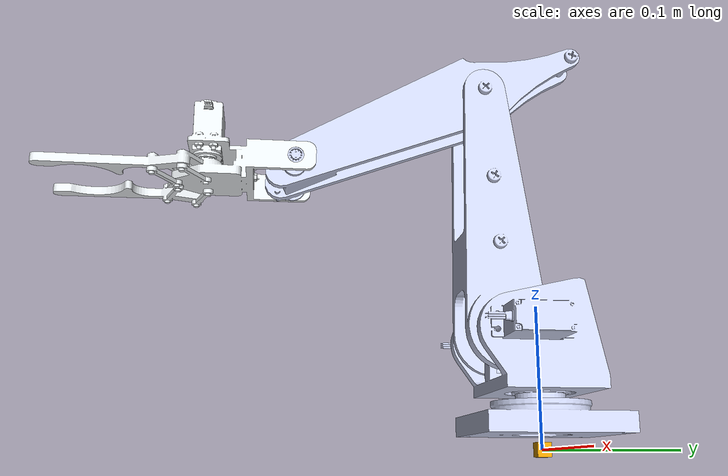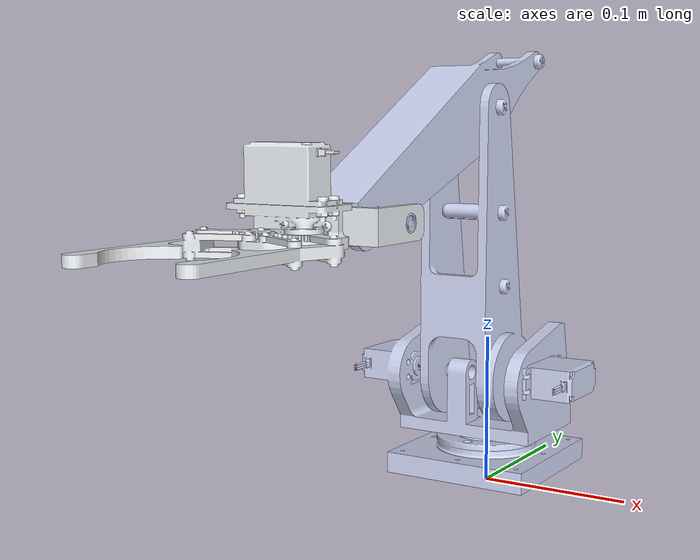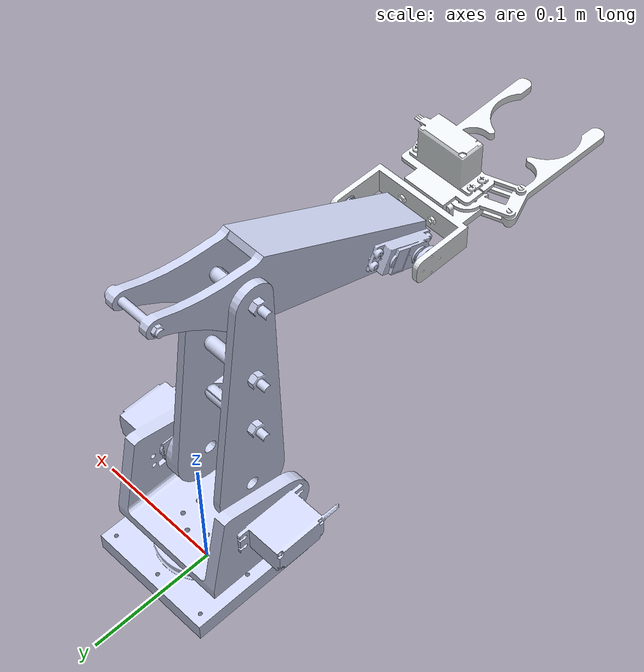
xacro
<?xml version="1.0" encoding="utf-8"?>
<robot name="arm" xmlns:xacro="http://www.ros.org/wiki/xacro">
  <link name="base_footprint">
    <visual>
      <origin
        xyz="0 0 0"
        rpy="0 0 0" />
      <mass   value="1.8" />
      <inertia
        ixx="0.000000000000"
        ixy="0.000000000000"
        ixz="0.000000000000"
        iyy="0.000000000000"
        iyz="0.000000000000"
        izz="0.000000000000" />
      <geometry>
        <box size="0.01 0.01 0.01"/>
      </geometry>
    </visual>
  </link>

  <link name="base_link">
    <inertial>
      <origin
        xyz="2.4100810754784E-09 -1.44493238359068E-08 0.00916688701767407"
        rpy="0 0 0" />
      <mass
        value="1.48135898316253" />
      <inertia
        ixx="0.000124542297357122"
        ixy="9.76806810262928E-13"
        ixz="1.70313497348212E-12"
        iyy="0.000124542109078445"
        iyz="-1.05555456349748E-11"
        izz="0.000244817372701188" />
    </inertial>
    <visual>
      <origin
        xyz="0 0 0"
        rpy="0 0 0" />
      <geometry>
        <mesh
          filename="package://arm/meshes/base_link.STL" />
      </geometry>
      <material
        name="">
        <color
          rgba="0.792156862745098 0.819607843137255 0.933333333333333 1" />
      </material>
    </visual>
    <collision>
      <origin
        xyz="0 0 0"
        rpy="0 0 0" />
      <geometry>
        <mesh
          filename="package://arm/meshes/base_link.STL" />
      </geometry>
    </collision>
  </link>
    <joint
    name="bsaefront"
    type="fixed">
    <origin
      xyz="0 0 0.01"
      rpy="0 0 0" />
    <parent
      link="base_footprint" />
    <child
      link="base_link" />
  </joint>
  <link
    name="zhuantai">
    <inertial>
      <origin
        xyz="-0.011999 0.055179 -8.8289E-05"
        rpy="0 0 0" />
      <mass
        value="0.3267" />
      <inertia
        ixx="0.00027279"
        ixy="4.8006E-06"
        ixz="-3.1478E-12"
        iyy="0.00029875"
        iyz="1.6978E-11"
        izz="0.00015578" />
    </inertial>
    <visual>
      <origin
        xyz="0 0 0"
        rpy="0 0 0" />
      <geometry>
        <mesh
          filename="package://arm/meshes/zhuantai.STL" />
      </geometry>
      <material
        name="">
        <color
          rgba="0.79608 0.82353 0.93725 1" />
      </material>
    </visual>
    <collision>
      <origin
        xyz="0 0 0"
        rpy="0 0 0" />
      <geometry>
        <mesh
          filename="package://arm/meshes/zhuantai.STL" />
      </geometry>
    </collision>
  </link>
  <joint
    name="joint1"
    type="continuous">
    <origin
      xyz="0 0 0.00499999999999986"
      rpy="1.5707963267949 0 1.5707963267949" />
    <parent
      link="base_link" />
    <child
      link="zhuantai" />
    <axis
      xyz="0 -1 0" />
  </joint>
  <link
    name="bigarm">
    <inertial>
      <origin
        xyz="-0.00100337836934973 0.0780090299098532 -0.00615261150661628"
        rpy="0 0 0" />
      <mass
        value="0.000245587294450206" />
      <inertia
        ixx="0.000557532152213457"
        ixy="-2.8011208990669E-05"
        ixz="2.47917280447207E-06"
        iyy="0.000119109076882338"
        iyz="2.90800840435598E-05"
        izz="0.000609426584131222" />
    </inertial>
    <visual>
      <origin
        xyz="0 0 0"
        rpy="0 0 0" />
      <geometry>
        <mesh
          filename="package://arm/meshes/bigarm.STL" />
      </geometry>
      <material
        name="">
        <color
          rgba="0.796078431372549 0.823529411764706 0.937254901960784 1" />
      </material>
    </visual>
    <collision>
      <origin
        xyz="0 0 0"
        rpy="0 0 0" />
      <geometry>
        <mesh
          filename="package://arm/meshes/bigarm.STL" />
      </geometry>
    </collision>
  </link>
  <joint
    name="joint2"
    type="continuous">
    <origin
      xyz="-0.0279693093597577 0.0656993491435481 0.00249999999948774"
      rpy="0 1.5707963267949 0" />
    <parent
      link="zhuantai" />
    <child
      link="bigarm" />
    <axis
      xyz="-1 0 0" />
  </joint>
  <link
    name="smallarm">
    <inertial>
      <origin
        xyz="0.0235285609294794 -0.0176352263920943 -0.0499678766464063"
        rpy="0 0 0" />
      <mass
        value="0.000170564618114856" />
      <inertia
        ixx="0.000509722891714311"
        ixy="-3.31104759721371E-06"
        ixz="-6.12442935870747E-06"
        iyy="0.000445892301979633"
        iyz="-0.000164537890363107"
        izz="0.000119131575987572" />
    </inertial>
    <visual>
      <origin
        xyz="0 0 0"
        rpy="0 0 0" />
      <geometry>
        <mesh
          filename="package://arm/meshes/smallarm.STL" />
      </geometry>
      <material
        name="">
        <color
          rgba="0.796078431372549 0.823529411764706 0.937254901960784 1" />
      </material>
    </visual>
    <collision>
      <origin
        xyz="0 0 0"
        rpy="0 0 0" />
      <geometry>
        <mesh
          filename="package://arm/meshes/smallarm.STL" />
      </geometry>
    </collision>
  </link>
  <joint
    name="joint3"
    type="continuous">
    <origin
      xyz="-0.0239999999994174 0.174636899932102 -0.0112673502706042"
      rpy="0 0 0" />
    <parent
      link="bigarm" />
    <child
      link="smallarm" />
    <axis
      xyz="-1 0 0" />
  </joint>
  <link
    name="claw">
    <inertial>
      <origin
        xyz="-0.0396667445331423 -0.00212195225737732 0.0602292529686369"
        rpy="0 0 0" />
      <mass
        value="0.00010714008449797" />
      <inertia
        ixx="2.62267238937695E-05"
        ixy="-4.54171419305977E-08"
        ixz="-2.52768917102453E-07"
        iyy="5.10979075359834E-05"
        iyz="7.18279379282775E-07"
        izz="2.83714371448851E-05" />
    </inertial>
    <visual>
      <origin
        xyz="0 0 0"
        rpy="0 0 0" />
      <geometry>
        <mesh
          filename="package://arm/meshes/claw.STL" />
      </geometry>
      <material
        name="">
        <color
          rgba="0.898039215686275 0.917647058823529 0.929411764705882 1" />
      </material>
    </visual>
    <collision>
      <origin
        xyz="0 0 0"
        rpy="0 0 0" />
      <geometry>
        <mesh
          filename="package://arm/meshes/claw.STL" />
      </geometry>
    </collision>
  </link>
  <joint
    name="joint4"
    type="continuous">
    <origin
      xyz="-0.0160499999978932 -0.0625839738635943 -0.136320380776858"
      rpy="3.14159265358979 0 3.14159265358979" />
    <parent
      link="smallarm" />
    <child
      link="claw" />
    <axis
      xyz="-1 0 0" />
  </joint>

  <gazebo>
    <plugin name="control" filename="libgazebo_ros_control.so"/>
  </gazebo>

</robot>
